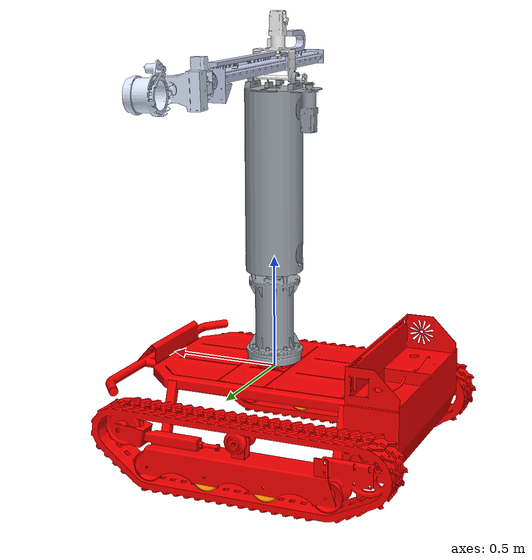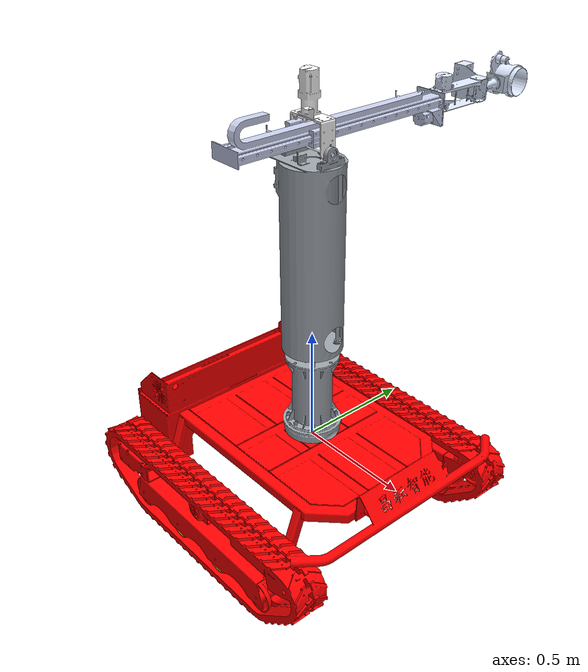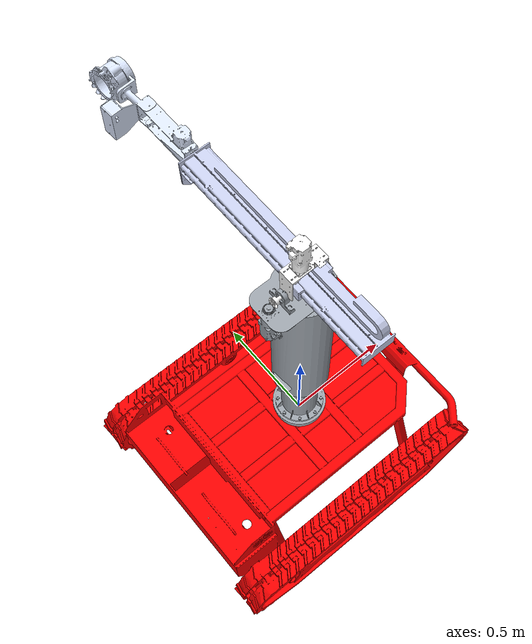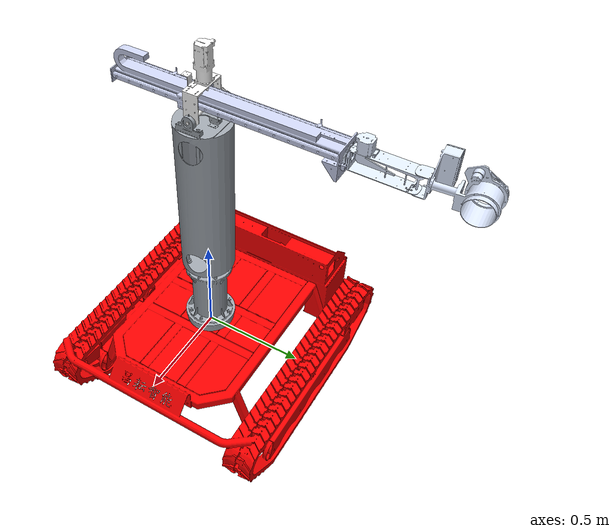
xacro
<?xml version="1.0"?>
<robot xmlns:xacro="http://www.ros.org/wiki/xacro" name="架子式桃子采摘机器人总装4">
    <xacro:arg name="initial_positions_file" default="initial_positions.yaml" />

    <!-- Import 架子式桃子采摘机器人总装4 urdf file -->
    <xacro:include filename="$(find peach_gantry_description)/urdf/peach_gantry.urdf" />

    <!-- Import control_xacro -->
    <xacro:include filename="架子式桃子采摘机器人总装4.ros2_control.xacro" />

    <xacro:架子式桃子采摘机器人总装4_ros2_control name="FakeSystem" initial_positions_file="$(arg initial_positions_file)"/>

</robot>

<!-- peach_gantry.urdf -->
<robot name="架子式桃子采摘机器人总装4">

  <!-- 虚拟根连杆：KDL 不支持根连杆带惯量，用无惯量的 base_footprint 作 TF 树根（REP-105） -->
  <link name="base_footprint"/>

  <joint name="base_footprint_joint" type="fixed">
    <parent link="base_footprint"/>
    <child link="base_link"/>
    <origin xyz="0 0 0" rpy="0 0 0"/>
  </joint>

  <link name="base_link">
    <visual>
      <origin xyz="0 0 0" rpy="0 0 0" />
      <geometry>
        <mesh filename="package://peach_gantry_description/meshes/base_link.STL" />
      </geometry>
      <material name="">
        <color rgba="1.00000000 0.00000000 0.00000000 1.00000000"/>
      </material>
    </visual>
    <collision>
      <origin xyz="0 0 0" rpy="0 0 0" />
      <geometry>
        <mesh filename="package://peach_gantry_description/meshes/base_link.STL" />
      </geometry>
    </collision>
    <inertial>
      <origin xyz="-0.1464429 0.0020312 -0.142396" rpy="0 0 0" />
      <mass value="196.9928677" />
      <inertia ixx="4.3980832" ixy="-0.0011572" ixz="-0.0024354" iyy="11.4438345" iyz="-0.0021542" izz="13.3446757" />
    </inertial>
  </link>

  <link name="right1_link">
    <visual>
      <origin xyz="0 0 0" rpy="0 0 0" />
      <geometry>
        <mesh filename="package://peach_gantry_description/meshes/right1_link.STL" />
      </geometry>
      <material name="">
        <color rgba="1.00000000 0.54902000 0.00000000 1.00000000"/>
      </material>
    </visual>
    <collision>
      <origin xyz="0 0 0" rpy="0 0 0" />
      <geometry>
        <mesh filename="package://peach_gantry_description/meshes/right1_link.STL" />
      </geometry>
    </collision>
    <inertial>
      <origin xyz="0 0 -0.08047" rpy="0 0 0" />
      <mass value="2.1306" />
      <inertia ixx="0.0033864" ixy="0" ixz="0" iyy="0.0033864" iyz="0" izz="0.0043308" />
    </inertial>
  </link>

  <link name="right2_link">
    <visual>
      <origin xyz="0 0 0" rpy="0 0 0" />
      <geometry>
        <mesh filename="package://peach_gantry_description/meshes/right2_link.STL" />
      </geometry>
      <material name="">
        <color rgba="1.00000000 0.54901961 0.00000000 1.00000000"/>
      </material>
    </visual>
    <collision>
      <origin xyz="0 0 0" rpy="0 0 0" />
      <geometry>
        <mesh filename="package://peach_gantry_description/meshes/right2_link.STL" />
      </geometry>
    </collision>
    <inertial>
      <origin xyz="0 0 -0.08047" rpy="0 0 0" />
      <mass value="2.1306481" />
      <inertia ixx="0.0033864" ixy="0" ixz="0" iyy="0.0033864" iyz="0" izz="0.0043308" />
    </inertial>
  </link>

  <link name="left1_link">
    <visual>
      <origin xyz="0 0 0" rpy="0 0 0" />
      <geometry>
        <mesh filename="package://peach_gantry_description/meshes/left1_link.STL" />
      </geometry>
      <material name="">
        <color rgba="1.00000000 0.54901961 0.00000000 1.00000000"/>
      </material>
    </visual>
    <collision>
      <origin xyz="0 0 0" rpy="0 0 0" />
      <geometry>
        <mesh filename="package://peach_gantry_description/meshes/left1_link.STL" />
      </geometry>
    </collision>
    <inertial>
      <origin xyz="0 0 0.08047" rpy="0 0 0" />
      <mass value="2.1306481" />
      <inertia ixx="0.0033864" ixy="0" ixz="0" iyy="0.0033864" iyz="0" izz="0.0043308" />
    </inertial>
  </link>

  <link name="left2_link">
    <visual>
      <origin xyz="0 0 0" rpy="0 0 0" />
      <geometry>
        <mesh filename="package://peach_gantry_description/meshes/left2_link.STL" />
      </geometry>
      <material name="">
        <color rgba="1.00000000 0.54901961 0.00000000 1.00000000"/>
      </material>
    </visual>
    <collision>
      <origin xyz="0 0 0" rpy="0 0 0" />
      <geometry>
        <mesh filename="package://peach_gantry_description/meshes/left2_link.STL" />
      </geometry>
    </collision>
    <inertial>
      <origin xyz="0 0 0.08047" rpy="0 0 0" />
      <mass value="2.1306481" />
      <inertia ixx="0.0033864" ixy="0" ixz="0" iyy="0.0033864" iyz="0" izz="0.0043308" />
    </inertial>
  </link>

  <link name="link1">
    <visual>
      <origin xyz="0 0 0" rpy="0 0 0" />
      <geometry>
        <mesh filename="package://peach_gantry_description/meshes/link1.STL" />
      </geometry>
      <material name="">
        <color rgba="0.61568627 0.64313725 0.67450980 1.00000000"/>
      </material>
    </visual>
    <collision>
      <origin xyz="0 0 0" rpy="0 0 0" />
      <geometry>
        <mesh filename="package://peach_gantry_description/meshes/link1.STL" />
      </geometry>
    </collision>
    <inertial>
      <origin xyz="-0.0001216 -0.0000721 0.4433465" rpy="0 0 0" />
      <mass value="33.5976929" />
      <inertia ixx="0.9014928" ixy="-0.0000331" ixz="-0.000085" iyy="0.9010152" iyz="-0.0000091" izz="0.1582769" />
    </inertial>
  </link>

  <link name="link2">
    <visual>
      <origin xyz="0 0 0" rpy="0 0 0" />
      <geometry>
        <mesh filename="package://peach_gantry_description/meshes/link2.STL" />
      </geometry>
      <material name="">
        <color rgba="0.61568627 0.64313725 0.67450980 1.00000000"/>
      </material>
    </visual>
    <collision>
      <origin xyz="0 0 0" rpy="0 0 0" />
      <geometry>
        <mesh filename="package://peach_gantry_description/meshes/link2.STL" />
      </geometry>
    </collision>
    <inertial>
      <origin xyz="-0.002365 -0.0000007 0.3819323" rpy="0 0 0" />
      <mass value="23.1376583" />
      <inertia ixx="0.8063871" ixy="0.0012704" ixz="-0.0000001" iyy="0.7947931" iyz="0.0000001" izz="0.2797177" />
    </inertial>
  </link>

  <link name="link3">
    <visual>
      <origin xyz="0 0 0" rpy="0 0 0" />
      <geometry>
        <mesh filename="package://peach_gantry_description/meshes/link3.STL" />
      </geometry>
      <material name="">
        <color rgba="1.00000000 1.00000000 1.00000000 1.00000000"/>
      </material>
    </visual>
    <collision>
      <origin xyz="0 0 0" rpy="0 0 0" />
      <geometry>
        <mesh filename="package://peach_gantry_description/meshes/link3.STL" />
      </geometry>
    </collision>
    <inertial>
      <origin xyz="-0.1037037 -0.0005206 -0.124123" rpy="0 0 0" />
      <mass value="0.4310566" />
      <inertia ixx="0.000523" ixy="-0.0000008" ixz="0.0000002" iyy="0.0006795" iyz="-0.0000001" izz="0.0003827" />
    </inertial>
  </link>

  <link name="link4">
    <visual>
      <origin xyz="0 0 0" rpy="0 0 0" />
      <geometry>
        <mesh filename="package://peach_gantry_description/meshes/link4.STL" />
      </geometry>
      <material name="">
        <color rgba="0.79216000 0.81961000 0.93333000 1.00000000"/>
      </material>
    </visual>
    <collision>
      <origin xyz="0 0 0" rpy="0 0 0" />
      <geometry>
        <mesh filename="package://peach_gantry_description/meshes/link4.STL" />
      </geometry>
    </collision>
    <inertial>
      <origin xyz="0.0074906 -0.031854 0.15501" rpy="0 0 0" />
      <mass value="3.2005" />
      <inertia ixx="0.19353" ixy="0.0000164" ixz="0.0000007" iyy="0.19429" iyz="-0.003156" izz="0.0038058" />
    </inertial>
  </link>

  <link name="link5">
    <visual>
      <origin xyz="0 0 0" rpy="0 0 0" />
      <geometry>
        <mesh filename="package://peach_gantry_description/meshes/link5.STL" />
      </geometry>
      <material name="">
        <color rgba="0.86666667 0.90980392 1.00000000 1.00000000"/>
      </material>
    </visual>
    <collision>
      <origin xyz="0 0 0" rpy="0 0 0" />
      <geometry>
        <mesh filename="package://peach_gantry_description/meshes/link5.STL" />
      </geometry>
    </collision>
    <inertial>
      <origin xyz="-0.0109649 0.0060867 0.1084363" rpy="0 0 0" />
      <mass value="0.5388368" />
      <inertia ixx="0.0016443" ixy="-0.0000217" ixz="-0.0000031" iyy="0.0016085" iyz="0.0000012" izz="0.0002419" />
    </inertial>
  </link>

  <link name="link6">
    <visual>
      <origin xyz="0 0 0" rpy="0 0 0" />
      <geometry>
        <mesh filename="package://peach_gantry_description/meshes/link6.STL" />
      </geometry>
      <material name="">
        <color rgba="0.86666667 0.90980392 1.00000000 1.00000000"/>
      </material>
    </visual>
    <collision>
      <origin xyz="0 0 0" rpy="0 0 0" />
      <geometry>
        <mesh filename="package://peach_gantry_description/meshes/link6.STL" />
      </geometry>
    </collision>
    <inertial>
      <origin xyz="0.0667896 0.1291973 -0.0039918" rpy="0 0 0" />
      <mass value="1.1636596" />
      <inertia ixx="0.0027843" ixy="0.0000145" ixz="0.0000323" iyy="0.0021337" iyz="-0.0000716" izz="0.0015378" />
    </inertial>
  </link>

  <joint name="right1_joint" type="continuous">
    <parent link="base_link" />
    <child link="right1_link" />
    <origin xyz="0.065 -0.59797 -0.315" rpy="1.5708 0 0" />
    <axis xyz="0 0 -1" />
    <limit effort="100" velocity="10" />
    <hardware>
      <motorType>None</motorType>
      <motorDirection>1</motorDirection>
      <armature>0</armature>
    </hardware>
  </joint>

  <joint name="right2_joint" type="continuous">
    <parent link="base_link" />
    <child link="right2_link" />
    <origin xyz="-0.205 -0.59797 -0.315" rpy="1.5708 0 0" />
    <axis xyz="0 0 -1" />
    <limit effort="100" velocity="10" />
    <hardware>
      <motorType>None</motorType>
      <motorDirection>1</motorDirection>
      <armature>0</armature>
    </hardware>
  </joint>

  <joint name="left1_joint" type="continuous">
    <parent link="base_link" />
    <child link="left1_link" />
    <origin xyz="0.065 0.59797 -0.315" rpy="1.5708 0 0" />
    <axis xyz="0 0 -1" />
    <limit effort="100" velocity="10" />
    <hardware>
      <motorType>None</motorType>
      <motorDirection>1</motorDirection>
      <armature>0</armature>
    </hardware>
  </joint>

  <joint name="left2_joint" type="continuous">
    <parent link="base_link" />
    <child link="left2_link" />
    <origin xyz="-0.205 0.59797 -0.315" rpy="1.5708 0 0" />
    <axis xyz="0 0 -1" />
    <limit effort="100" velocity="10" />
    <hardware>
      <motorType>None</motorType>
      <motorDirection>1</motorDirection>
      <armature>0</armature>
    </hardware>
  </joint>

  <joint name="joint1" type="revolute">
    <parent link="base_link" />
    <child link="link1" />
    <origin xyz="0 0 0" rpy="0 0 0" />
    <axis xyz="0 0 1" />
    <!-- 实物限位 ±180°（连续旋转会缠绕线缆）；速度为仿真占位限值，待实测替换 -->
    <limit lower="-3.1416" upper="3.1416" effort="100" velocity="1.5" />
    <hardware>
      <motorType>None</motorType>
      <motorDirection>1</motorDirection>
      <armature>0</armature>
    </hardware>
  </joint>

  <joint name="joint2" type="prismatic">
    <parent link="link1" />
    <child link="link2" />
    <origin xyz="0 0 0.4425" rpy="0 0 0" />
    <axis xyz="0 0 1" />
    <limit lower="0" upper="0.3" effort="100" velocity="0.25" /><!-- 仿真占位限值 -->
    <hardware>
      <motorType>None</motorType>
      <motorDirection>1</motorDirection>
      <armature>0</armature>
    </hardware>
  </joint>

  <joint name="joint3" type="revolute">
    <parent link="link2" />
    <child link="link3" />
    <origin xyz="0.1065 0 0.8392" rpy="0 1.5708 0" />
    <axis xyz="0 0 -1" />
    <limit lower="-0.8" upper="0.5" effort="100" velocity="1.5" /><!-- 仿真占位限值 -->
    <hardware>
      <motorType>None</motorType>
      <motorDirection>1</motorDirection>
      <armature>0</armature>
    </hardware>
  </joint>

  <joint name="joint4" type="prismatic">
    <parent link="link3" />
    <child link="link4" />
    <origin xyz="-0.031 0 -0.1065" rpy="-1.5708 -1.5708 0" />
    <axis xyz="0 0 1" />
    <limit lower="-0.5" upper="0.15" effort="100" velocity="0.25" /><!-- 仿真占位限值 -->
    <hardware>
      <motorType>None</motorType>
      <motorDirection>1</motorDirection>
      <armature>0</armature>
    </hardware>
  </joint>

  <joint name="joint5" type="revolute">
    <parent link="link4" />
    <child link="link5" />
    <origin xyz="-0.0009997 -0.0104 0.63294" rpy="0 0 0" />
    <axis xyz="0 0 1" />
    <limit lower="0.5" upper="3.6" effort="100" velocity="3.0" /><!-- 仿真占位限值 -->
    <hardware>
      <motorType>None</motorType>
      <motorDirection>1</motorDirection>
      <armature>0</armature>
    </hardware>
  </joint>

  <joint name="joint6" type="revolute">
    <parent link="link5" />
    <child link="link6" />
    <origin xyz="0 0 0.261" rpy="1.5708 0 1.1255" />
    <axis xyz="0 0 1" />
    <limit lower="-1" upper="1" effort="100" velocity="3.0" /><!-- 仿真占位限值 -->
    <hardware>
      <motorType>None</motorType>
      <motorDirection>1</motorDirection>
      <armature>0</armature>
    </hardware>
  </joint>

  <!-- 末端工具坐标系（TCP）：相对 link6（joint6 坐标系）零姿态偏移
       x=47.9 mm, y=230.066 mm, z=0 mm（2026-08-04 实测给定），
       夹爪/吸盘换装或重测后修改 tool0_joint 的 origin -->
  <link name="tool0"/>

  <joint name="tool0_joint" type="fixed">
    <parent link="link6"/>
    <child link="tool0"/>
    <origin xyz="0.0479 0.230066 0" rpy="0 0 0"/>
  </joint>

</robot>
